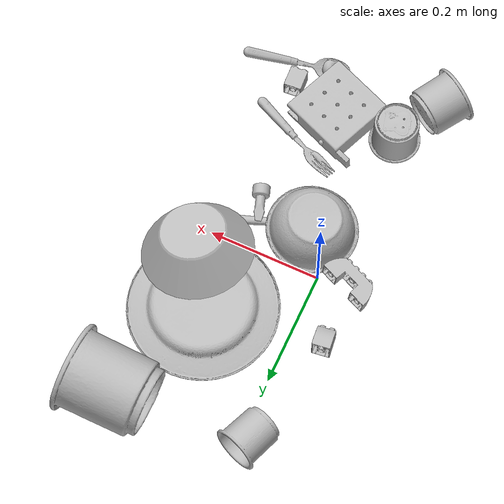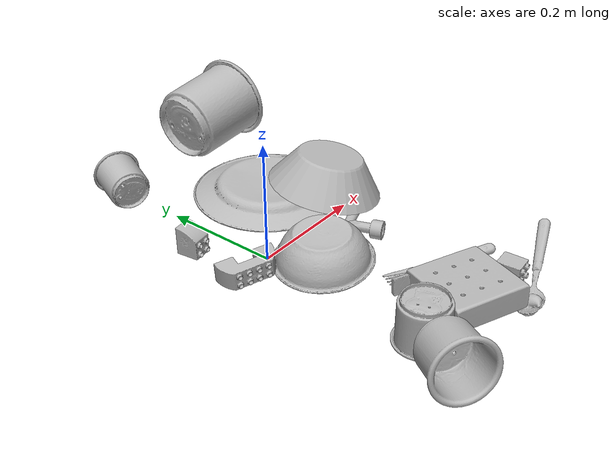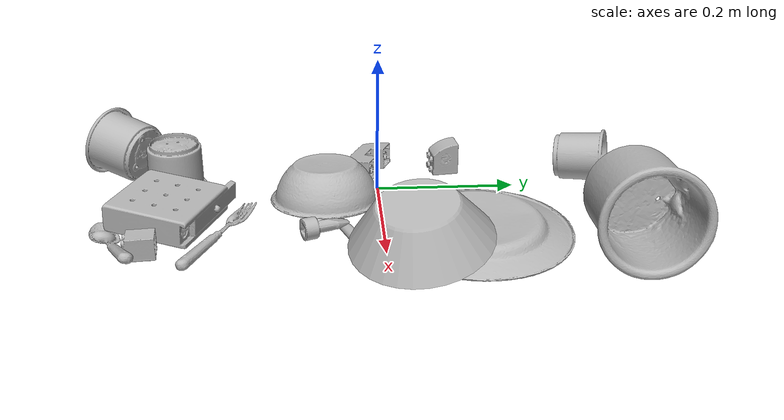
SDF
<sdf version="1.4">
  <world name="default">
    <light name="light1" type="point">
      <pose>0 0 1 0 0 0</pose>
      <diffuse>3 3 3 1</diffuse>
      <specular>3 3 3 1</specular>
    </light>
    <light name="light2" type="point">
      <pose>0 0.5 2 0 0 0</pose>
      <diffuse>1 1 1 1</diffuse>
      <specular>1 1 1 1</specular>
    </light>
    <light name="light3" type="point">
      <pose>0 0.5 2 0 0 0</pose>
      <diffuse>3 3 3 1</diffuse>
      <specular>3 3 3 1</specular>
    </light>
    <scene>
      <ambient>0.7 0.7 0.7</ambient>
    </scene>
    <model name="plate1">
      <link name="link_plate1">
        <collision name="default">
          <geometry>
            <mesh>
              <uri>model://plate/collision_meshes/collision.obj</uri>
              <scale>1.0 1.0 1.0</scale>
            </mesh>
          </geometry>
          <surface>
            <friction>
              <ode>
                <mu>0.5</mu>
                <mu2>0.5</mu2>
              </ode>
            </friction>
          <contact>
        <ode>
            <max_vel>0</max_vel>
            <min_depth>0.0001</min_depth>
            <kp>1e8</kp>
        </ode>
    </contact></surface>
        </collision>
        <visual name="default">
          <geometry>
            <mesh>
              <uri>model://plate/visual_meshes/visual.dae</uri>
              <scale>1.0 1.0 1.0</scale>
            </mesh>
          </geometry>
        </visual>
        <inertial>
          <mass>0.17760059237480164</mass>
          <pose>-0.0006044625188224018 0.0002782586379908025 -0.0010561981471255422 0.0022187804018266454 -0.0032254852757079067 0.45261158451631034</pose>
          <inertia>
            <ixx>0.0008308187</ixx>
            <iyy>0.0008228725</iyy>
            <izz>0.0016249575</izz>
            <ixy>0</ixy>
            <ixz>0</ixz>
            <iyz>0</iyz>
          </inertia>
        </inertial>
      </link>
      <pose>0.15359702706336975 0.1284855455160141 0.013819441199302673 3.129483577460333 -0.00643853093202334 -2.397132156051967</pose>
    </model>
    <model name="cup1">
      <link name="link_cup1">
        <collision name="default">
          <geometry>
            <mesh>
              <uri>model://e_cups/collision_meshes/collision.obj</uri>
              <scale>2.0 2.0 2.0</scale>
            </mesh>
          </geometry>
          <surface>
            <friction>
              <ode>
                <mu>0.5</mu>
                <mu2>0.5</mu2>
              </ode>
            </friction>
          <contact>
        <ode>
            <max_vel>0</max_vel>
            <min_depth>0.0001</min_depth>
            <kp>1e8</kp>
        </ode>
    </contact></surface>
        </collision>
        <visual name="default">
          <geometry>
            <mesh>
              <uri>model://e_cups/visual_meshes/visual.dae</uri>
              <scale>2.0 2.0 2.0</scale>
            </mesh>
          </geometry>
        </visual>
        <inertial>
          <mass>0.744063675403595</mass>
          <pose>0.002271148143336177 0.005759569350630045 -0.007765938527882099 0.6952380949131286 0.08767384491187986 -0.5235246841726229</pose>
          <inertia>
            <ixx>0.0026243117</ixx>
            <iyy>0.0027427815</iyy>
            <izz>0.0025091455</izz>
            <ixy>0</ixy>
            <ixz>0</ixz>
            <iyz>0</iyz>
          </inertia>
        </inertial>
      </link>
      <pose>0.2168246954679489 0.3303000032901764 0.06997038424015045 1.4706053031005712 -0.4090273683408909 1.6091433977256264</pose>
    </model>
    <model name="silverware1">
      <link name="link_silverware1">
        <collision name="default">
          <geometry>
            <mesh>
              <uri>model://knife/collision_meshes/collision.obj</uri>
              <scale>1.0 1.0 1.0</scale>
            </mesh>
          </geometry>
          <surface>
            <friction>
              <ode>
                <mu>0.5</mu>
                <mu2>0.5</mu2>
              </ode>
            </friction>
          <contact>
        <ode>
            <max_vel>0</max_vel>
            <min_depth>0.0001</min_depth>
            <kp>1e8</kp>
        </ode>
    </contact></surface>
        </collision>
        <visual name="default">
          <geometry>
            <mesh>
              <uri>model://knife/visual_meshes/visual.dae</uri>
              <scale>1.0 1.0 1.0</scale>
            </mesh>
          </geometry>
        </visual>
        <inertial>
          <mass>0.01882243901491165</mass>
          <pose>-0.02378525212407112 0.001527512213215232 5.062019408796914e-05 0.07305335090357784 0.017248422780830937 -0.007409828138098005</pose>
          <inertia>
            <ixx>5.342572e-07</ixx>
            <iyy>7.231275e-05</iyy>
            <izz>7.248483e-05</izz>
            <ixy>0</ixy>
            <ixz>0</ixz>
            <iyz>0</iyz>
          </inertia>
        </inertial>
      </link>
      <pose>0.09736533463001251 -0.07074550539255142 0.005996071733534336 2.9602767940202908 0.02539027776563905 -2.7486434205522436</pose>
    </model>
    <model name="silverware2">
      <link name="link_silverware2">
        <collision name="default">
          <geometry>
            <mesh>
              <uri>model://fork/collision_meshes/collision.obj</uri>
              <scale>1.0 1.0 1.0</scale>
            </mesh>
          </geometry>
          <surface>
            <friction>
              <ode>
                <mu>0.5</mu>
                <mu2>0.5</mu2>
              </ode>
            </friction>
          <contact>
        <ode>
            <max_vel>0</max_vel>
            <min_depth>0.0001</min_depth>
            <kp>1e8</kp>
        </ode>
    </contact></surface>
        </collision>
        <visual name="default">
          <geometry>
            <mesh>
              <uri>model://fork/visual_meshes/visual.dae</uri>
              <scale>1.0 1.0 1.0</scale>
            </mesh>
          </geometry>
        </visual>
        <inertial>
          <mass>0.02216319739818573</mass>
          <pose>-0.029570037499070168 0.0004658822435885668 0.0003218860365450382 -0.01355085274048469 -0.010977831838055618 0.014453900749429992</pose>
          <inertia>
            <ixx>7.769453e-07</ixx>
            <iyy>5.7861733e-05</iyy>
            <izz>5.8209254e-05</izz>
            <ixy>0</ixy>
            <ixz>0</ixz>
            <iyz>0</iyz>
          </inertia>
        </inertial>
      </link>
      <pose>0.14600223302841187 -0.2253391444683075 0.005704442970454693 -0.18067850668787247 0.02493148686411632 2.6888426149623905</pose>
    </model>
    <model name="silverware3">
      <link name="link_silverware3">
        <collision name="default">
          <geometry>
            <mesh>
              <uri>model://spoon/collision_meshes/collision.obj</uri>
              <scale>1.0 1.0 1.0</scale>
            </mesh>
          </geometry>
          <surface>
            <friction>
              <ode>
                <mu>0.5</mu>
                <mu2>0.5</mu2>
              </ode>
            </friction>
          <contact>
        <ode>
            <max_vel>0</max_vel>
            <min_depth>0.0001</min_depth>
            <kp>1e8</kp>
        </ode>
    </contact></surface>
        </collision>
        <visual name="default">
          <geometry>
            <mesh>
              <uri>model://spoon/visual_meshes/visual.dae</uri>
              <scale>1.0 1.0 1.0</scale>
            </mesh>
          </geometry>
        </visual>
        <inertial>
          <mass>0.0369713120162487</mass>
          <pose>-0.005526314955204725 -0.001603417214937508 -0.0007271651993505657 0.03521850370393077 -0.03906584809093457 0.006150612862082015</pose>
          <inertia>
            <ixx>2.0564048e-06</ixx>
            <iyy>0.00014067463</iyy>
            <izz>0.00014168874</izz>
            <ixy>0</ixy>
            <ixz>0</ixz>
            <iyz>0</iyz>
          </inertia>
        </inertial>
      </link>
      <pose>0.2015567421913147 -0.35723450779914856 0.025382449850440025 0.24499353807490312 0.30277288179075096 -2.781700646034505</pose>
    </model>
    <model name="cup3">
      <link name="link_cup3">
        <collision name="default">
          <geometry>
            <mesh>
              <uri>model://h_cups/collision_meshes/collision.obj</uri>
              <scale>1.0 1.0 1.0</scale>
            </mesh>
          </geometry>
          <surface>
            <friction>
              <ode>
                <mu>0.5</mu>
                <mu2>0.5</mu2>
              </ode>
            </friction>
          <contact>
        <ode>
            <max_vel>0</max_vel>
            <min_depth>0.0001</min_depth>
            <kp>1e8</kp>
        </ode>
    </contact></surface>
        </collision>
        <visual name="default">
          <geometry>
            <mesh>
              <uri>model://h_cups/visual_meshes/visual.dae</uri>
              <scale>1.0 1.0 1.0</scale>
            </mesh>
          </geometry>
        </visual>
        <inertial>
          <mass>0.07650958746671677</mass>
          <pose>-2.7029362172470428e-05 0.0002301867789356038 -0.0018405390437692404 -0.02436239906192228 0.06545228304852578 0.1288505673262376</pose>
          <inertia>
            <ixx>9.880857e-05</ixx>
            <iyy>9.7629454e-05</iyy>
            <izz>0.0001036231</izz>
            <ixy>0</ixy>
            <ixz>0</ixz>
            <iyz>0</iyz>
          </inertia>
        </inertial>
      </link>
      <pose>-0.016150977462530136 -0.29635241627693176 0.03753233700990677 -3.1415124036131066 0.0001050096747187197 0.36796809328674124</pose>
    </model>
    <model name="cup4">
      <link name="link_cup4">
        <collision name="default">
          <geometry>
            <mesh>
              <uri>model://f_cups/collision_meshes/collision.obj</uri>
              <scale>1.0 1.0 1.0</scale>
            </mesh>
          </geometry>
          <surface>
            <friction>
              <ode>
                <mu>0.5</mu>
                <mu2>0.5</mu2>
              </ode>
            </friction>
          <contact>
        <ode>
            <max_vel>0</max_vel>
            <min_depth>0.0001</min_depth>
            <kp>1e8</kp>
        </ode>
    </contact></surface>
        </collision>
        <visual name="default">
          <geometry>
            <mesh>
              <uri>model://f_cups/visual_meshes/visual.dae</uri>
              <scale>1.0 1.0 1.0</scale>
            </mesh>
          </geometry>
        </visual>
        <inertial>
          <mass>0.06643713265657425</mass>
          <pose>-0.003171468386426568 -0.0006240070797502995 -0.003655537962913513 0.7862285241405351 -0.26079358215919657 -0.18237309734404591</pose>
          <inertia>
            <ixx>6.2452695e-05</ixx>
            <iyy>6.551358e-05</iyy>
            <izz>6.820148e-05</izz>
            <ixy>0</ixy>
            <ixz>0</ixz>
            <iyz>0</iyz>
          </inertia>
        </inertial>
      </link>
      <pose>-0.01773872971534729 0.304861456155777 0.03703106567263603 1.3152940802610256 -1.1783053913936328 3.01822020439252</pose>
    </model>
    <model name="cup5">
      <link name="link_cup5">
        <collision name="default">
          <geometry>
            <mesh>
              <uri>model://j_cups/collision_meshes/collision.obj</uri>
              <scale>1.0 1.0 1.0</scale>
            </mesh>
          </geometry>
          <surface>
            <friction>
              <ode>
                <mu>0.5</mu>
                <mu2>0.5</mu2>
              </ode>
            </friction>
          <contact>
        <ode>
            <max_vel>0</max_vel>
            <min_depth>0.0001</min_depth>
            <kp>1e8</kp>
        </ode>
    </contact></surface>
        </collision>
        <visual name="default">
          <geometry>
            <mesh>
              <uri>model://j_cups/visual_meshes/visual.dae</uri>
              <scale>1.0 1.0 1.0</scale>
            </mesh>
          </geometry>
        </visual>
        <inertial>
          <mass>0.12178023159503937</mass>
          <pose>0.0006164865335449576 0.000539897009730339 -0.001347901183180511 0.03030406613159603 0.03757978252187804 0.4386981755119238</pose>
          <inertia>
            <ixx>0.0001788119</ixx>
            <iyy>0.00018067128</iyy>
            <izz>0.00020613305</izz>
            <ixy>0</ixy>
            <ixz>0</ixz>
            <iyz>0</iyz>
          </inertia>
        </inertial>
      </link>
      <pose>-0.06702012568712234 -0.37202122807502747 0.04714483767747879 -1.2938030944638081 -1.0868254474649675 2.2980240851936102</pose>
    </model>
    <model name="bowl1">
      <link name="link_bowl1">
        <collision name="default">
          <geometry>
            <mesh>
              <uri>model://bowl/collision_meshes/collision.obj</uri>
              <scale>1.0 1.0 1.0</scale>
            </mesh>
          </geometry>
          <surface>
            <friction>
              <ode>
                <mu>0.5</mu>
                <mu2>0.5</mu2>
              </ode>
            </friction>
          <contact>
        <ode>
            <max_vel>0</max_vel>
            <min_depth>0.0001</min_depth>
            <kp>1e8</kp>
        </ode>
    </contact></surface>
        </collision>
        <visual name="default">
          <geometry>
            <mesh>
              <uri>model://bowl/visual_meshes/visual.dae</uri>
              <scale>1.0 1.0 1.0</scale>
            </mesh>
          </geometry>
        </visual>
        <inertial>
          <mass>0.07745425403118134</mass>
          <pose>0.0002044533030129969 -0.001030205748975277 -0.0008042643312364817 -0.015764104528614948 0.014546761750555465 0.7140386532433999</pose>
          <inertia>
            <ixx>0.00017791858</ixx>
            <iyy>0.0001739432</iyy>
            <izz>0.00029932024</izz>
            <ixy>0</ixy>
            <ixz>0</ixz>
            <iyz>0</iyz>
          </inertia>
        </inertial>
      </link>
      <pose>0.04212439805269241 -0.07632999122142792 0.03329591080546379 3.133207348755938 -0.08217506396198114 0.2847379234847325</pose>
    </model>
    <model name="bowl2">
      <link name="link_bowl2">
        <collision name="default">
          <geometry>
            <mesh>
              <uri>model://bowl_a/collision_meshes/collision.obj</uri>
              <scale>1.0 1.0 1.0</scale>
            </mesh>
          </geometry>
          <surface>
            <friction>
              <ode>
                <mu>0.5</mu>
                <mu2>0.5</mu2>
              </ode>
            </friction>
          <contact>
        <ode>
            <max_vel>0</max_vel>
            <min_depth>0.0001</min_depth>
            <kp>1e8</kp>
        </ode>
    </contact></surface>
        </collision>
        <visual name="default">
          <geometry>
            <mesh>
              <uri>model://bowl_a/visual_meshes/visual.dae</uri>
              <scale>1.0 1.0 1.0</scale>
            </mesh>
          </geometry>
        </visual>
        <inertial>
          <mass>0.3088552951812744</mass>
          <pose>0.00027867488097399473 4.730938235297799e-05 -0.0013765291078016162 -0.0009805400563029818 -0.0010938222386440513 -0.19123616665791646</pose>
          <inertia>
            <ixx>0.0008793254</ixx>
            <iyy>0.00088472397</iyy>
            <izz>0.0015639137</izz>
            <ixy>0</ixy>
            <ixz>0</ixz>
            <iyz>0</iyz>
          </inertia>
        </inertial>
      </link>
      <pose>0.20815932750701904 0.04153064638376236 0.04973793029785156 3.05487998855343 -0.18750684303729348 2.936205251886498</pose>
    </model>
    <model name="toy1">
      <link name="link_toy1">
        <collision name="default">
          <geometry>
            <mesh>
              <uri>model://nine_hole_peg_test/collision_meshes/collision.obj</uri>
              <scale>1.0 1.0 1.0</scale>
            </mesh>
          </geometry>
          <surface>
            <friction>
              <ode>
                <mu>0.5</mu>
                <mu2>0.5</mu2>
              </ode>
            </friction>
          <contact>
        <ode>
            <max_vel>0</max_vel>
            <min_depth>0.0001</min_depth>
            <kp>1e8</kp>
        </ode>
    </contact></surface>
        </collision>
        <visual name="default">
          <geometry>
            <mesh>
              <uri>model://nine_hole_peg_test/visual_meshes/visual.dae</uri>
              <scale>1.0 1.0 1.0</scale>
            </mesh>
          </geometry>
        </visual>
        <inertial>
          <mass>0.6997236609458923</mass>
          <pose>-0.004617386497557163 -0.009647613391280174 2.6460686058271676e-05 -0.0014666798725883532 0.0007194177661592421 -0.634241755630697</pose>
          <inertia>
            <ixx>0.001094133</ixx>
            <iyy>0.0010215805</iyy>
            <izz>0.0019172435</izz>
            <ixy>0</ixy>
            <ixz>0</ixz>
            <iyz>0</iyz>
          </inertia>
        </inertial>
      </link>
      <pose>0.08831438422203064 -0.2888740301132202 0.024106768891215324 0.005331667945289789 0.055709970742064865 1.1775111119519825</pose>
    </model>
    <model name="toy2">
      <link name="link_toy2">
        <collision name="default">
          <geometry>
            <mesh>
              <uri>model://b_lego_duplo/collision_meshes/collision.obj</uri>
              <scale>1.0 1.0 1.0</scale>
            </mesh>
          </geometry>
          <surface>
            <friction>
              <ode>
                <mu>0.5</mu>
                <mu2>0.5</mu2>
              </ode>
            </friction>
          <contact>
        <ode>
            <max_vel>0</max_vel>
            <min_depth>0.0001</min_depth>
            <kp>1e8</kp>
        </ode>
    </contact></surface>
        </collision>
        <visual name="default">
          <geometry>
            <mesh>
              <uri>model://b_lego_duplo/visual_meshes/visual.dae</uri>
              <scale>1.0 1.0 1.0</scale>
            </mesh>
          </geometry>
        </visual>
        <inertial>
          <mass>0.036269694566726685</mass>
          <pose>-0.00011053054186049849 -9.152130587608553e-06 0.0019294297089800239 -0.03749458994465856 -0.026354447033388347 0.4518895757464325</pose>
          <inertia>
            <ixx>7.4228647e-06</ixx>
            <iyy>7.4727645e-06</iyy>
            <izz>6.6135317e-06</izz>
            <ixy>0</ixy>
            <ixz>0</ixz>
            <iyz>0</iyz>
          </inertia>
        </inertial>
      </link>
      <pose>0.18780294060707092 -0.3242841958999634 0.016216618940234184 -1.5802335389494815 0.0003274443256587257 -3.075220409738652</pose>
    </model>
    <model name="toy3">
      <link name="link_toy3">
        <collision name="default">
          <geometry>
            <mesh>
              <uri>model://e_lego_duplo/collision_meshes/collision.obj</uri>
              <scale>1.0 1.0 1.0</scale>
            </mesh>
          </geometry>
          <surface>
            <friction>
              <ode>
                <mu>0.5</mu>
                <mu2>0.5</mu2>
              </ode>
            </friction>
          <contact>
        <ode>
            <max_vel>0</max_vel>
            <min_depth>0.0001</min_depth>
            <kp>1e8</kp>
        </ode>
    </contact></surface>
        </collision>
        <visual name="default">
          <geometry>
            <mesh>
              <uri>model://e_lego_duplo/visual_meshes/visual.dae</uri>
              <scale>1.0 1.0 1.0</scale>
            </mesh>
          </geometry>
        </visual>
        <inertial>
          <mass>0.09994293004274368</mass>
          <pose>0.0003256055060774088 0.00023485402925871313 0.0019521453650668263 -0.0225675226805428 -6.825163911406593e-05 -0.00762515763197677</pose>
          <inertia>
            <ixx>2.08414e-05</ixx>
            <iyy>8.553845e-05</iyy>
            <izz>8.329725e-05</izz>
            <ixy>0</ixy>
            <ixz>0</ixz>
            <iyz>0</iyz>
          </inertia>
        </inertial>
      </link>
      <pose>-0.05610412731766701 -0.013065909966826439 0.019266478717327118 -1.6212332834665328 0.0720293034671916 2.7441485940458623</pose>
    </model>
    <model name="toy4">
      <link name="link_toy4">
        <collision name="default">
          <geometry>
            <mesh>
              <uri>model://d_lego_duplo/collision_meshes/collision.obj</uri>
              <scale>1.0 1.0 1.0</scale>
            </mesh>
          </geometry>
          <surface>
            <friction>
              <ode>
                <mu>0.5</mu>
                <mu2>0.5</mu2>
              </ode>
            </friction>
          <contact>
        <ode>
            <max_vel>0</max_vel>
            <min_depth>0.0001</min_depth>
            <kp>1e8</kp>
        </ode>
    </contact></surface>
        </collision>
        <visual name="default">
          <geometry>
            <mesh>
              <uri>model://d_lego_duplo/visual_meshes/visual.dae</uri>
              <scale>1.0 1.0 1.0</scale>
            </mesh>
          </geometry>
        </visual>
        <inertial>
          <mass>0.04219998046755791</mass>
          <pose>0.0028305635787546635 0.00016366135969292372 0.0008589813369326293 0.08010947906167593 -0.38355230128712514 0.001029700717632254</pose>
          <inertia>
            <ixx>8.169298e-06</ixx>
            <iyy>1.1594444e-05</iyy>
            <izz>1.1181217e-05</izz>
            <ixy>0</ixy>
            <ixz>0</ixz>
            <iyz>0</iyz>
          </inertia>
        </inertial>
      </link>
      <pose>-0.05727832019329071 0.1020539402961731 0.02419700287282467 -1.2876673339033637 1.5707955985450117 -2.730837357538699</pose>
    </model>
    <model name="toy5">
      <link name="link_toy5">
        <collision name="default">
          <geometry>
            <mesh>
              <uri>model://e_toy_airplane/collision_meshes/collision.obj</uri>
              <scale>1.0 1.0 1.0</scale>
            </mesh>
          </geometry>
          <surface>
            <friction>
              <ode>
                <mu>0.5</mu>
                <mu2>0.5</mu2>
              </ode>
            </friction>
          <contact>
        <ode>
            <max_vel>0</max_vel>
            <min_depth>0.0001</min_depth>
            <kp>1e8</kp>
        </ode>
    </contact></surface>
        </collision>
        <visual name="default">
          <geometry>
            <mesh>
              <uri>model://e_toy_airplane/visual_meshes/visual.dae</uri>
              <scale>1.0 1.0 1.0</scale>
            </mesh>
          </geometry>
        </visual>
        <inertial>
          <mass>0.01083444245159626</mass>
          <pose>0.00011740464105969295 -2.2482989152194932e-05 -0.011187201365828514 0.005518500665833105 0.009228299677984822 0.1504140594290799</pose>
          <inertia>
            <ixx>3.3067965e-06</ixx>
            <iyy>3.2729695e-06</iyy>
            <izz>9.938221e-07</izz>
            <ixy>0</ixy>
            <ixz>0</ixz>
            <iyz>0</iyz>
          </inertia>
        </inertial>
      </link>
      <pose>0.14476920664310455 -0.07915131002664566 0.01586795225739479 -1.538648169223931 1.3636328326859959 0.3775614566647603</pose>
    </model>
  <physics type="ode">
      <max_contacts>50</max_contacts>
      <ode>
        <solver>
          <type>quick</type>
          <iters>75</iters>
        </solver>
        <constraints>
          <contact_max_correcting_vel>0</contact_max_correcting_vel>
          <contact_surface_layer>0</contact_surface_layer>
        </constraints>
      </ode>
    </physics></world>
</sdf>
